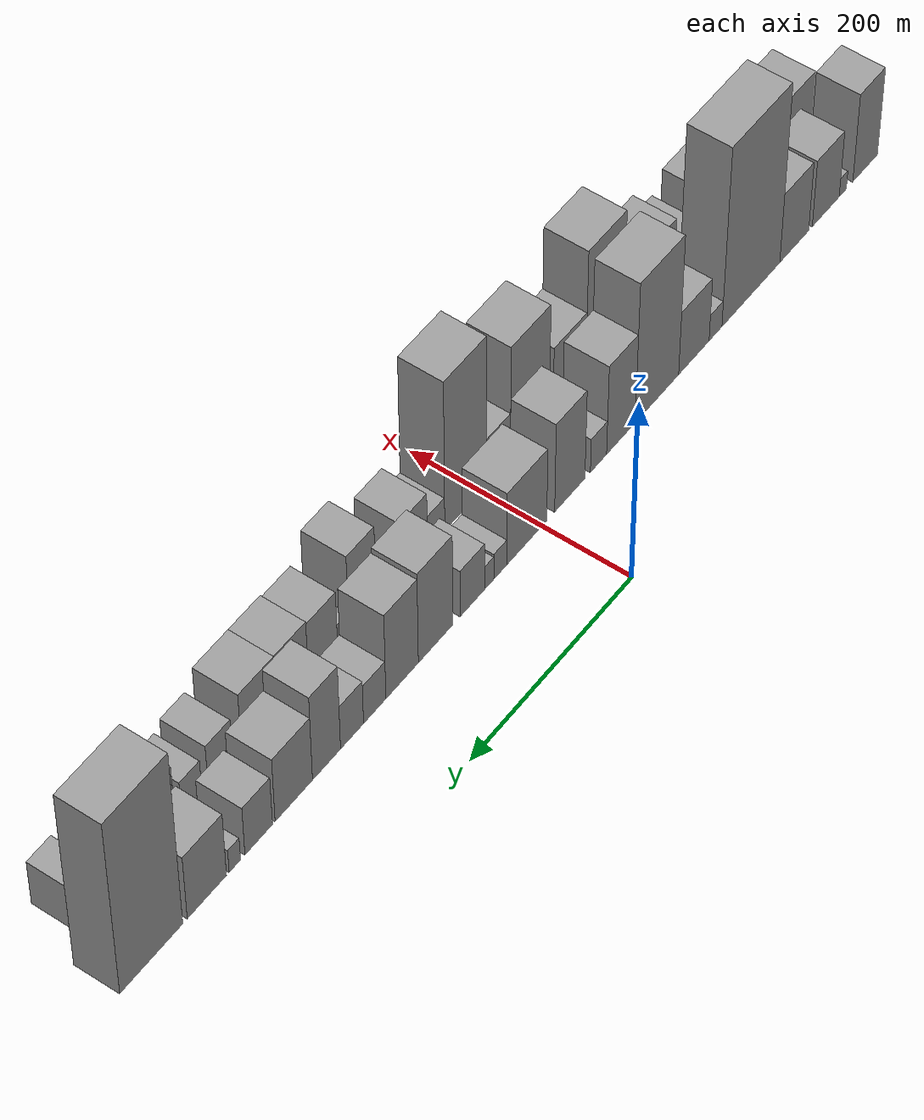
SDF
<sdf version="1.6">
 <world name="default">
  <scene>
   <sky><clouds><speed>12</speed></clouds></sky>
   <ambient>0.4 0.4 0.4 1</ambient>
   <background>0.7 0.7 0.7 1</background>
   <shadows>1</shadows>
  </scene>
  <gravity>0 0 -9.8066</gravity>
  <magnetic_field>6e-06 2.3e-05 -4.2e-05</magnetic_field>
  <physics default="0" name="default_physics" type="ode">
   <ode>
    <solver>
     <type>quick</type>
     <iters>10</iters>
     <sor>1.0</sor>
     <use_dynamic_moi_rescaling>0</use_dynamic_moi_rescaling>
    </solver>
    <constraints>
     <cfm>0</cfm>
     <erp>0.2</erp>
     <contact_max_correcting_vel>100</contact_max_correcting_vel>
     <contact_surface_layer>0.001</contact_surface_layer>
    </constraints>
   </ode>
   <max_step_size>0.004</max_step_size>
   <real_time_factor>1</real_time_factor>
   <real_time_update_rate>250</real_time_update_rate>
  </physics>
  <light name="sun" type="directional">
   <pose>0 0 10 0 0 0</pose>
   <diffuse>0.8 0.8 0.8 1</diffuse>
   <specular>0.2 0.2 0.2 1</specular>
   <attenuation>
    <range>1000</range>
    <constant>0.9</constant>
    <linear>0.01</linear>
    <quadratic>0.001</quadratic>
   </attenuation>
   <direction>-0.5 0.1 -0.9</direction>
  </light>
  <model name="building_1">
   <static>1</static>
   <pose>100.0000 -432.4942 0 0.000000 0.000000 0.000000</pose>
   <link name="link">
    <pose>0 0 49.50 0 0 0</pose>
    <collision name="collision"><geometry><box><size>40.0000 35.0115 99.0000</size></box></geometry></collision>
    <visual name="visual">
     <cast_shadows>0</cast_shadows>
     <geometry><box><size>40.0000 35.0115 99.0000</size></box></geometry>
     <material>
      <script>
       <uri>model://grey_wall/materials/scripts</uri>
       <uri>model://grey_wall/materials/textures</uri>
       <name>vrc/grey_wall</name>
      </script>
     </material>
    </visual>
   </link>
  </model>
  <model name="building_2">
   <static>1</static>
   <pose>100.0000 -400.9338 0 0.000000 0.000000 0.000000</pose>
   <link name="link">
    <pose>0 0 10.50 0 0 0</pose>
    <collision name="collision"><geometry><box><size>40.0000 10.1093 21.0000</size></box></geometry></collision>
    <visual name="visual">
     <cast_shadows>0</cast_shadows>
     <geometry><box><size>40.0000 10.1093 21.0000</size></box></geometry>
     <material>
      <script>
       <uri>model://grey_wall/materials/scripts</uri>
       <uri>model://grey_wall/materials/textures</uri>
       <name>vrc/grey_wall</name>
      </script>
     </material>
    </visual>
   </link>
  </model>
  <model name="building_3">
   <static>1</static>
   <pose>100.0000 -377.0162 0 0.000000 0.000000 0.000000</pose>
   <link name="link">
    <pose>0 0 37.50 0 0 0</pose>
    <collision name="collision"><geometry><box><size>40.0000 37.7259 75.0000</size></box></geometry></collision>
    <visual name="visual">
     <cast_shadows>0</cast_shadows>
     <geometry><box><size>40.0000 37.7259 75.0000</size></box></geometry>
     <material>
      <script>
       <uri>model://grey_wall/materials/scripts</uri>
       <uri>model://grey_wall/materials/textures</uri>
       <name>vrc/grey_wall</name>
      </script>
     </material>
    </visual>
   </link>
  </model>
  <model name="building_4">
   <static>1</static>
   <pose>100.0000 -333.1597 0 0.000000 0.000000 0.000000</pose>
   <link name="link">
    <pose>0 0 39.00 0 0 0</pose>
    <collision name="collision"><geometry><box><size>40.0000 39.9869 78.0000</size></box></geometry></collision>
    <visual name="visual">
     <cast_shadows>0</cast_shadows>
     <geometry><box><size>40.0000 39.9869 78.0000</size></box></geometry>
     <material>
      <script>
       <uri>model://grey_wall/materials/scripts</uri>
       <uri>model://grey_wall/materials/textures</uri>
       <name>vrc/grey_wall</name>
      </script>
     </material>
    </visual>
   </link>
  </model>
  <model name="building_5">
   <static>1</static>
   <pose>100.0000 -273.7759 0 0.000000 0.000000 0.000000</pose>
   <link name="link">
    <pose>0 0 100.50 0 0 0</pose>
    <collision name="collision"><geometry><box><size>40.0000 78.7808 201.0000</size></box></geometry></collision>
    <visual name="visual">
     <cast_shadows>0</cast_shadows>
     <geometry><box><size>40.0000 78.7808 201.0000</size></box></geometry>
     <material>
      <script>
       <uri>model://grey_wall/materials/scripts</uri>
       <uri>model://grey_wall/materials/textures</uri>
       <name>vrc/grey_wall</name>
      </script>
     </material>
    </visual>
   </link>
  </model>
  <model name="building_6">
   <static>1</static>
   <pose>100.0000 -225.7383 0 0.000000 0.000000 0.000000</pose>
   <link name="link">
    <pose>0 0 15.00 0 0 0</pose>
    <collision name="collision"><geometry><box><size>40.0000 17.2944 30.0000</size></box></geometry></collision>
    <visual name="visual">
     <cast_shadows>0</cast_shadows>
     <geometry><box><size>40.0000 17.2944 30.0000</size></box></geometry>
     <material>
      <script>
       <uri>model://grey_wall/materials/scripts</uri>
       <uri>model://grey_wall/materials/textures</uri>
       <name>vrc/grey_wall</name>
      </script>
     </material>
    </visual>
   </link>
  </model>
  <model name="building_7">
   <static>1</static>
   <pose>100.0000 -196.7890 0 0.000000 0.000000 0.000000</pose>
   <link name="link">
    <pose>0 0 36.00 0 0 0</pose>
    <collision name="collision"><geometry><box><size>40.0000 40.6041 72.0000</size></box></geometry></collision>
    <visual name="visual">
     <cast_shadows>0</cast_shadows>
     <geometry><box><size>40.0000 40.6041 72.0000</size></box></geometry>
     <material>
      <script>
       <uri>model://grey_wall/materials/scripts</uri>
       <uri>model://grey_wall/materials/textures</uri>
       <name>vrc/grey_wall</name>
      </script>
     </material>
    </visual>
   </link>
  </model>
  <model name="building_8">
   <static>1</static>
   <pose>100.0000 -147.8988 0 0.000000 0.000000 0.000000</pose>
   <link name="link">
    <pose>0 0 79.50 0 0 0</pose>
    <collision name="collision"><geometry><box><size>40.0000 57.1761 159.0000</size></box></geometry></collision>
    <visual name="visual">
     <cast_shadows>0</cast_shadows>
     <geometry><box><size>40.0000 57.1761 159.0000</size></box></geometry>
     <material>
      <script>
       <uri>model://grey_wall/materials/scripts</uri>
       <uri>model://grey_wall/materials/textures</uri>
       <name>vrc/grey_wall</name>
      </script>
     </material>
    </visual>
   </link>
  </model>
  <model name="building_9">
   <static>1</static>
   <pose>100.0000 -100.7473 0 0.000000 0.000000 0.000000</pose>
   <link name="link">
    <pose>0 0 51.00 0 0 0</pose>
    <collision name="collision"><geometry><box><size>40.0000 37.1269 102.0000</size></box></geometry></collision>
    <visual name="visual">
     <cast_shadows>0</cast_shadows>
     <geometry><box><size>40.0000 37.1269 102.0000</size></box></geometry>
     <material>
      <script>
       <uri>model://grey_wall/materials/scripts</uri>
       <uri>model://grey_wall/materials/textures</uri>
       <name>vrc/grey_wall</name>
      </script>
     </material>
    </visual>
   </link>
  </model>
  <model name="building_10">
   <static>1</static>
   <pose>100.0000 -71.7634 0 0.000000 0.000000 0.000000</pose>
   <link name="link">
    <pose>0 0 19.50 0 0 0</pose>
    <collision name="collision"><geometry><box><size>40.0000 20.8409 39.0000</size></box></geometry></collision>
    <visual name="visual">
     <cast_shadows>0</cast_shadows>
     <geometry><box><size>40.0000 20.8409 39.0000</size></box></geometry>
     <material>
      <script>
       <uri>model://grey_wall/materials/scripts</uri>
       <uri>model://grey_wall/materials/textures</uri>
       <name>vrc/grey_wall</name>
      </script>
     </material>
    </visual>
   </link>
  </model>
  <model name="building_11">
   <static>1</static>
   <pose>100.0000 -35.0520 0 0.000000 0.000000 0.000000</pose>
   <link name="link">
    <pose>0 0 51.00 0 0 0</pose>
    <collision name="collision"><geometry><box><size>40.0000 38.5819 102.0000</size></box></geometry></collision>
    <visual name="visual">
     <cast_shadows>0</cast_shadows>
     <geometry><box><size>40.0000 38.5819 102.0000</size></box></geometry>
     <material>
      <script>
       <uri>model://grey_wall/materials/scripts</uri>
       <uri>model://grey_wall/materials/textures</uri>
       <name>vrc/grey_wall</name>
      </script>
     </material>
    </visual>
   </link>
  </model>
  <model name="building_12">
   <static>1</static>
   <pose>100.0000 19.2634 0 0.000000 0.000000 0.000000</pose>
   <link name="link">
    <pose>0 0 42.00 0 0 0</pose>
    <collision name="collision"><geometry><box><size>40.0000 50.0490 84.0000</size></box></geometry></collision>
    <visual name="visual">
     <cast_shadows>0</cast_shadows>
     <geometry><box><size>40.0000 50.0490 84.0000</size></box></geometry>
     <material>
      <script>
       <uri>model://grey_wall/materials/scripts</uri>
       <uri>model://grey_wall/materials/textures</uri>
       <name>vrc/grey_wall</name>
      </script>
     </material>
    </visual>
   </link>
  </model>
  <model name="building_13">
   <static>1</static>
   <pose>100.0000 52.4092 0 0.000000 0.000000 0.000000</pose>
   <link name="link">
    <pose>0 0 15.00 0 0 0</pose>
    <collision name="collision"><geometry><box><size>40.0000 16.2426 30.0000</size></box></geometry></collision>
    <visual name="visual">
     <cast_shadows>0</cast_shadows>
     <geometry><box><size>40.0000 16.2426 30.0000</size></box></geometry>
     <material>
      <script>
       <uri>model://grey_wall/materials/scripts</uri>
       <uri>model://grey_wall/materials/textures</uri>
       <name>vrc/grey_wall</name>
      </script>
     </material>
    </visual>
   </link>
  </model>
  <model name="building_14">
   <static>1</static>
   <pose>100.0000 66.1328 0 0.000000 0.000000 0.000000</pose>
   <link name="link">
    <pose>0 0 13.50 0 0 0</pose>
    <collision name="collision"><geometry><box><size>40.0000 11.2047 27.0000</size></box></geometry></collision>
    <visual name="visual">
     <cast_shadows>0</cast_shadows>
     <geometry><box><size>40.0000 11.2047 27.0000</size></box></geometry>
     <material>
      <script>
       <uri>model://grey_wall/materials/scripts</uri>
       <uri>model://grey_wall/materials/textures</uri>
       <name>vrc/grey_wall</name>
      </script>
     </material>
    </visual>
   </link>
  </model>
  <model name="building_15">
   <static>1</static>
   <pose>100.0000 86.8536 0 0.000000 0.000000 0.000000</pose>
   <link name="link">
    <pose>0 0 27.00 0 0 0</pose>
    <collision name="collision"><geometry><box><size>40.0000 30.2367 54.0000</size></box></geometry></collision>
    <visual name="visual">
     <cast_shadows>0</cast_shadows>
     <geometry><box><size>40.0000 30.2367 54.0000</size></box></geometry>
     <material>
      <script>
       <uri>model://grey_wall/materials/scripts</uri>
       <uri>model://grey_wall/materials/textures</uri>
       <name>vrc/grey_wall</name>
      </script>
     </material>
    </visual>
   </link>
  </model>
  <model name="building_16">
   <static>1</static>
   <pose>100.0000 131.8946 0 0.000000 0.000000 0.000000</pose>
   <link name="link">
    <pose>0 0 52.50 0 0 0</pose>
    <collision name="collision"><geometry><box><size>40.0000 41.8454 105.0000</size></box></geometry></collision>
    <visual name="visual">
     <cast_shadows>0</cast_shadows>
     <geometry><box><size>40.0000 41.8454 105.0000</size></box></geometry>
     <material>
      <script>
       <uri>model://grey_wall/materials/scripts</uri>
       <uri>model://grey_wall/materials/textures</uri>
       <name>vrc/grey_wall</name>
      </script>
     </material>
    </visual>
   </link>
  </model>
  <model name="building_17">
   <static>1</static>
   <pose>100.0000 172.3350 0 0.000000 0.000000 0.000000</pose>
   <link name="link">
    <pose>0 0 49.50 0 0 0</pose>
    <collision name="collision"><geometry><box><size>40.0000 39.0354 99.0000</size></box></geometry></collision>
    <visual name="visual">
     <cast_shadows>0</cast_shadows>
     <geometry><box><size>40.0000 39.0354 99.0000</size></box></geometry>
     <material>
      <script>
       <uri>model://grey_wall/materials/scripts</uri>
       <uri>model://grey_wall/materials/textures</uri>
       <name>vrc/grey_wall</name>
      </script>
     </material>
    </visual>
   </link>
  </model>
  <model name="building_18">
   <static>1</static>
   <pose>100.0000 205.1579 0 0.000000 0.000000 0.000000</pose>
   <link name="link">
    <pose>0 0 22.50 0 0 0</pose>
    <collision name="collision"><geometry><box><size>40.0000 26.6104 45.0000</size></box></geometry></collision>
    <visual name="visual">
     <cast_shadows>0</cast_shadows>
     <geometry><box><size>40.0000 26.6104 45.0000</size></box></geometry>
     <material>
      <script>
       <uri>model://grey_wall/materials/scripts</uri>
       <uri>model://grey_wall/materials/textures</uri>
       <name>vrc/grey_wall</name>
      </script>
     </material>
    </visual>
   </link>
  </model>
  <model name="building_19">
   <static>1</static>
   <pose>100.0000 232.0301 0 0.000000 0.000000 0.000000</pose>
   <link name="link">
    <pose>0 0 25.50 0 0 0</pose>
    <collision name="collision"><geometry><box><size>40.0000 27.1341 51.0000</size></box></geometry></collision>
    <visual name="visual">
     <cast_shadows>0</cast_shadows>
     <geometry><box><size>40.0000 27.1341 51.0000</size></box></geometry>
     <material>
      <script>
       <uri>model://grey_wall/materials/scripts</uri>
       <uri>model://grey_wall/materials/textures</uri>
       <name>vrc/grey_wall</name>
      </script>
     </material>
    </visual>
   </link>
  </model>
  <model name="building_20">
   <static>1</static>
   <pose>100.0000 261.9880 0 0.000000 0.000000 0.000000</pose>
   <link name="link">
    <pose>0 0 49.50 0 0 0</pose>
    <collision name="collision"><geometry><box><size>40.0000 32.7817 99.0000</size></box></geometry></collision>
    <visual name="visual">
     <cast_shadows>0</cast_shadows>
     <geometry><box><size>40.0000 32.7817 99.0000</size></box></geometry>
     <material>
      <script>
       <uri>model://grey_wall/materials/scripts</uri>
       <uri>model://grey_wall/materials/textures</uri>
       <name>vrc/grey_wall</name>
      </script>
     </material>
    </visual>
   </link>
  </model>
  <model name="building_21">
   <static>1</static>
   <pose>100.0000 300.0381 0 0.000000 0.000000 0.000000</pose>
   <link name="link">
    <pose>0 0 37.50 0 0 0</pose>
    <collision name="collision"><geometry><box><size>40.0000 43.3186 75.0000</size></box></geometry></collision>
    <visual name="visual">
     <cast_shadows>0</cast_shadows>
     <geometry><box><size>40.0000 43.3186 75.0000</size></box></geometry>
     <material>
      <script>
       <uri>model://grey_wall/materials/scripts</uri>
       <uri>model://grey_wall/materials/textures</uri>
       <name>vrc/grey_wall</name>
      </script>
     </material>
    </visual>
   </link>
  </model>
  <model name="building_22">
   <static>1</static>
   <pose>100.0000 340.4455 0 0.000000 0.000000 0.000000</pose>
   <link name="link">
    <pose>0 0 28.50 0 0 0</pose>
    <collision name="collision"><geometry><box><size>40.0000 31.4962 57.0000</size></box></geometry></collision>
    <visual name="visual">
     <cast_shadows>0</cast_shadows>
     <geometry><box><size>40.0000 31.4962 57.0000</size></box></geometry>
     <material>
      <script>
       <uri>model://grey_wall/materials/scripts</uri>
       <uri>model://grey_wall/materials/textures</uri>
       <name>vrc/grey_wall</name>
      </script>
     </material>
    </visual>
   </link>
  </model>
  <model name="building_23">
   <static>1</static>
   <pose>100.0000 367.6402 0 0.000000 0.000000 0.000000</pose>
   <link name="link">
    <pose>0 0 13.50 0 0 0</pose>
    <collision name="collision"><geometry><box><size>40.0000 12.8931 27.0000</size></box></geometry></collision>
    <visual name="visual">
     <cast_shadows>0</cast_shadows>
     <geometry><box><size>40.0000 12.8931 27.0000</size></box></geometry>
     <material>
      <script>
       <uri>model://grey_wall/materials/scripts</uri>
       <uri>model://grey_wall/materials/textures</uri>
       <name>vrc/grey_wall</name>
      </script>
     </material>
    </visual>
   </link>
  </model>
  <model name="building_24">
   <static>1</static>
   <pose>100.0000 399.1260 0 0.000000 0.000000 0.000000</pose>
   <link name="link">
    <pose>0 0 37.50 0 0 0</pose>
    <collision name="collision"><geometry><box><size>40.0000 44.0786 75.0000</size></box></geometry></collision>
    <visual name="visual">
     <cast_shadows>0</cast_shadows>
     <geometry><box><size>40.0000 44.0786 75.0000</size></box></geometry>
     <material>
      <script>
       <uri>model://grey_wall/materials/scripts</uri>
       <uri>model://grey_wall/materials/textures</uri>
       <name>vrc/grey_wall</name>
      </script>
     </material>
    </visual>
   </link>
  </model>
  <model name="building_25">
   <static>1</static>
   <pose>100.0000 460.9439 0 0.000000 0.000000 0.000000</pose>
   <link name="link">
    <pose>0 0 102.00 0 0 0</pose>
    <collision name="collision"><geometry><box><size>40.0000 69.5573 204.0000</size></box></geometry></collision>
    <visual name="visual">
     <cast_shadows>0</cast_shadows>
     <geometry><box><size>40.0000 69.5573 204.0000</size></box></geometry>
     <material>
      <script>
       <uri>model://grey_wall/materials/scripts</uri>
       <uri>model://grey_wall/materials/textures</uri>
       <name>vrc/grey_wall</name>
      </script>
     </material>
    </visual>
   </link>
  </model>
  <model name="building_26">
   <static>1</static>
   <pose>155.0000 -420.9958 0 0.000000 0.000000 0.000000</pose>
   <link name="link">
    <pose>0 0 34.50 0 0 0</pose>
    <collision name="collision"><geometry><box><size>40.0000 38.0083 69.0000</size></box></geometry></collision>
    <visual name="visual">
     <cast_shadows>0</cast_shadows>
     <geometry><box><size>40.0000 38.0083 69.0000</size></box></geometry>
     <material>
      <script>
       <uri>model://grey_wall/materials/scripts</uri>
       <uri>model://grey_wall/materials/textures</uri>
       <name>vrc/grey_wall</name>
      </script>
     </material>
    </visual>
   </link>
  </model>
  <model name="building_27">
   <static>1</static>
   <pose>155.0000 -388.5147 0 0.000000 0.000000 0.000000</pose>
   <link name="link">
    <pose>0 0 13.50 0 0 0</pose>
    <collision name="collision"><geometry><box><size>40.0000 10.9538 27.0000</size></box></geometry></collision>
    <visual name="visual">
     <cast_shadows>0</cast_shadows>
     <geometry><box><size>40.0000 10.9538 27.0000</size></box></geometry>
     <material>
      <script>
       <uri>model://grey_wall/materials/scripts</uri>
       <uri>model://grey_wall/materials/textures</uri>
       <name>vrc/grey_wall</name>
      </script>
     </material>
    </visual>
   </link>
  </model>
  <model name="building_28">
   <static>1</static>
   <pose>155.0000 -373.1808 0 0.000000 0.000000 0.000000</pose>
   <link name="link">
    <pose>0 0 19.50 0 0 0</pose>
    <collision name="collision"><geometry><box><size>40.0000 19.7140 39.0000</size></box></geometry></collision>
    <visual name="visual">
     <cast_shadows>0</cast_shadows>
     <geometry><box><size>40.0000 19.7140 39.0000</size></box></geometry>
     <material>
      <script>
       <uri>model://grey_wall/materials/scripts</uri>
       <uri>model://grey_wall/materials/textures</uri>
       <name>vrc/grey_wall</name>
      </script>
     </material>
    </visual>
   </link>
  </model>
  <model name="building_29">
   <static>1</static>
   <pose>155.0000 -341.9853 0 0.000000 0.000000 0.000000</pose>
   <link name="link">
    <pose>0 0 33.00 0 0 0</pose>
    <collision name="collision"><geometry><box><size>40.0000 36.6771 66.0000</size></box></geometry></collision>
    <visual name="visual">
     <cast_shadows>0</cast_shadows>
     <geometry><box><size>40.0000 36.6771 66.0000</size></box></geometry>
     <material>
      <script>
       <uri>model://grey_wall/materials/scripts</uri>
       <uri>model://grey_wall/materials/textures</uri>
       <name>vrc/grey_wall</name>
      </script>
     </material>
    </visual>
   </link>
  </model>
  <model name="building_30">
   <static>1</static>
   <pose>155.0000 -306.8685 0 0.000000 0.000000 0.000000</pose>
   <link name="link">
    <pose>0 0 33.00 0 0 0</pose>
    <collision name="collision"><geometry><box><size>40.0000 33.5566 66.0000</size></box></geometry></collision>
    <visual name="visual">
     <cast_shadows>0</cast_shadows>
     <geometry><box><size>40.0000 33.5566 66.0000</size></box></geometry>
     <material>
      <script>
       <uri>model://grey_wall/materials/scripts</uri>
       <uri>model://grey_wall/materials/textures</uri>
       <name>vrc/grey_wall</name>
      </script>
     </material>
    </visual>
   </link>
  </model>
  <model name="building_31">
   <static>1</static>
   <pose>155.0000 -283.5239 0 0.000000 0.000000 0.000000</pose>
   <link name="link">
    <pose>0 0 13.50 0 0 0</pose>
    <collision name="collision"><geometry><box><size>40.0000 13.1326 27.0000</size></box></geometry></collision>
    <visual name="visual">
     <cast_shadows>0</cast_shadows>
     <geometry><box><size>40.0000 13.1326 27.0000</size></box></geometry>
     <material>
      <script>
       <uri>model://grey_wall/materials/scripts</uri>
       <uri>model://grey_wall/materials/textures</uri>
       <name>vrc/grey_wall</name>
      </script>
     </material>
    </visual>
   </link>
  </model>
  <model name="building_32">
   <static>1</static>
   <pose>155.0000 -263.8584 0 0.000000 0.000000 0.000000</pose>
   <link name="link">
    <pose>0 0 24.00 0 0 0</pose>
    <collision name="collision"><geometry><box><size>40.0000 26.1984 48.0000</size></box></geometry></collision>
    <visual name="visual">
     <cast_shadows>0</cast_shadows>
     <geometry><box><size>40.0000 26.1984 48.0000</size></box></geometry>
     <material>
      <script>
       <uri>model://grey_wall/materials/scripts</uri>
       <uri>model://grey_wall/materials/textures</uri>
       <name>vrc/grey_wall</name>
      </script>
     </material>
    </visual>
   </link>
  </model>
  <model name="building_33">
   <static>1</static>
   <pose>155.0000 -229.9461 0 0.000000 0.000000 0.000000</pose>
   <link name="link">
    <pose>0 0 36.00 0 0 0</pose>
    <collision name="collision"><geometry><box><size>40.0000 41.6261 72.0000</size></box></geometry></collision>
    <visual name="visual">
     <cast_shadows>0</cast_shadows>
     <geometry><box><size>40.0000 41.6261 72.0000</size></box></geometry>
     <material>
      <script>
       <uri>model://grey_wall/materials/scripts</uri>
       <uri>model://grey_wall/materials/textures</uri>
       <name>vrc/grey_wall</name>
      </script>
     </material>
    </visual>
   </link>
  </model>
  <model name="building_34">
   <static>1</static>
   <pose>155.0000 -194.3432 0 0.000000 0.000000 0.000000</pose>
   <link name="link">
    <pose>0 0 13.50 0 0 0</pose>
    <collision name="collision"><geometry><box><size>40.0000 11.5797 27.0000</size></box></geometry></collision>
    <visual name="visual">
     <cast_shadows>0</cast_shadows>
     <geometry><box><size>40.0000 11.5797 27.0000</size></box></geometry>
     <material>
      <script>
       <uri>model://grey_wall/materials/scripts</uri>
       <uri>model://grey_wall/materials/textures</uri>
       <name>vrc/grey_wall</name>
      </script>
     </material>
    </visual>
   </link>
  </model>
  <model name="building_35">
   <static>1</static>
   <pose>155.0000 -158.0654 0 0.000000 0.000000 0.000000</pose>
   <link name="link">
    <pose>0 0 72.00 0 0 0</pose>
    <collision name="collision"><geometry><box><size>40.0000 48.9759 144.0000</size></box></geometry></collision>
    <visual name="visual">
     <cast_shadows>0</cast_shadows>
     <geometry><box><size>40.0000 48.9759 144.0000</size></box></geometry>
     <material>
      <script>
       <uri>model://grey_wall/materials/scripts</uri>
       <uri>model://grey_wall/materials/textures</uri>
       <name>vrc/grey_wall</name>
      </script>
     </material>
    </visual>
   </link>
  </model>
  <model name="building_36">
   <static>1</static>
   <pose>155.0000 -112.5287 0 0.000000 0.000000 0.000000</pose>
   <link name="link">
    <pose>0 0 37.50 0 0 0</pose>
    <collision name="collision"><geometry><box><size>40.0000 42.0975 75.0000</size></box></geometry></collision>
    <visual name="visual">
     <cast_shadows>0</cast_shadows>
     <geometry><box><size>40.0000 42.0975 75.0000</size></box></geometry>
     <material>
      <script>
       <uri>model://grey_wall/materials/scripts</uri>
       <uri>model://grey_wall/materials/textures</uri>
       <name>vrc/grey_wall</name>
      </script>
     </material>
    </visual>
   </link>
  </model>
  <model name="building_37">
   <static>1</static>
   <pose>155.0000 -61.7200 0 0.000000 0.000000 0.000000</pose>
   <link name="link">
    <pose>0 0 64.50 0 0 0</pose>
    <collision name="collision"><geometry><box><size>40.0000 49.5199 129.0000</size></box></geometry></collision>
    <visual name="visual">
     <cast_shadows>0</cast_shadows>
     <geometry><box><size>40.0000 49.5199 129.0000</size></box></geometry>
     <material>
      <script>
       <uri>model://grey_wall/materials/scripts</uri>
       <uri>model://grey_wall/materials/textures</uri>
       <name>vrc/grey_wall</name>
      </script>
     </material>
    </visual>
   </link>
  </model>
  <model name="building_38">
   <static>1</static>
   <pose>155.0000 -21.9188 0 0.000000 0.000000 0.000000</pose>
   <link name="link">
    <pose>0 0 27.00 0 0 0</pose>
    <collision name="collision"><geometry><box><size>40.0000 30.0825 54.0000</size></box></geometry></collision>
    <visual name="visual">
     <cast_shadows>0</cast_shadows>
     <geometry><box><size>40.0000 30.0825 54.0000</size></box></geometry>
     <material>
      <script>
       <uri>model://grey_wall/materials/scripts</uri>
       <uri>model://grey_wall/materials/textures</uri>
       <name>vrc/grey_wall</name>
      </script>
     </material>
    </visual>
   </link>
  </model>
  <model name="building_39">
   <static>1</static>
   <pose>155.0000 19.1896 0 0.000000 0.000000 0.000000</pose>
   <link name="link">
    <pose>0 0 85.50 0 0 0</pose>
    <collision name="collision"><geometry><box><size>40.0000 52.1341 171.0000</size></box></geometry></collision>
    <visual name="visual">
     <cast_shadows>0</cast_shadows>
     <geometry><box><size>40.0000 52.1341 171.0000</size></box></geometry>
     <material>
      <script>
       <uri>model://grey_wall/materials/scripts</uri>
       <uri>model://grey_wall/materials/textures</uri>
       <name>vrc/grey_wall</name>
      </script>
     </material>
    </visual>
   </link>
  </model>
  <model name="building_40">
   <static>1</static>
   <pose>155.0000 55.9720 0 0.000000 0.000000 0.000000</pose>
   <link name="link">
    <pose>0 0 19.50 0 0 0</pose>
    <collision name="collision"><geometry><box><size>40.0000 21.4307 39.0000</size></box></geometry></collision>
    <visual name="visual">
     <cast_shadows>0</cast_shadows>
     <geometry><box><size>40.0000 21.4307 39.0000</size></box></geometry>
     <material>
      <script>
       <uri>model://grey_wall/materials/scripts</uri>
       <uri>model://grey_wall/materials/textures</uri>
       <name>vrc/grey_wall</name>
      </script>
     </material>
    </visual>
   </link>
  </model>
  <model name="building_41">
   <static>1</static>
   <pose>155.0000 83.4148 0 0.000000 0.000000 0.000000</pose>
   <link name="link">
    <pose>0 0 33.00 0 0 0</pose>
    <collision name="collision"><geometry><box><size>40.0000 33.4549 66.0000</size></box></geometry></collision>
    <visual name="visual">
     <cast_shadows>0</cast_shadows>
     <geometry><box><size>40.0000 33.4549 66.0000</size></box></geometry>
     <material>
      <script>
       <uri>model://grey_wall/materials/scripts</uri>
       <uri>model://grey_wall/materials/textures</uri>
       <name>vrc/grey_wall</name>
      </script>
     </material>
    </visual>
   </link>
  </model>
  <model name="building_42">
   <static>1</static>
   <pose>155.0000 116.7351 0 0.000000 0.000000 0.000000</pose>
   <link name="link">
    <pose>0 0 13.50 0 0 0</pose>
    <collision name="collision"><geometry><box><size>40.0000 13.1857 27.0000</size></box></geometry></collision>
    <visual name="visual">
     <cast_shadows>0</cast_shadows>
     <geometry><box><size>40.0000 13.1857 27.0000</size></box></geometry>
     <material>
      <script>
       <uri>model://grey_wall/materials/scripts</uri>
       <uri>model://grey_wall/materials/textures</uri>
       <name>vrc/grey_wall</name>
      </script>
     </material>
    </visual>
   </link>
  </model>
  <model name="building_43">
   <static>1</static>
   <pose>155.0000 145.8277 0 0.000000 0.000000 0.000000</pose>
   <link name="link">
    <pose>0 0 46.50 0 0 0</pose>
    <collision name="collision"><geometry><box><size>40.0000 32.9994 93.0000</size></box></geometry></collision>
    <visual name="visual">
     <cast_shadows>0</cast_shadows>
     <geometry><box><size>40.0000 32.9994 93.0000</size></box></geometry>
     <material>
      <script>
       <uri>model://grey_wall/materials/scripts</uri>
       <uri>model://grey_wall/materials/textures</uri>
       <name>vrc/grey_wall</name>
      </script>
     </material>
    </visual>
   </link>
  </model>
  <model name="building_44">
   <static>1</static>
   <pose>155.0000 169.0052 0 0.000000 0.000000 0.000000</pose>
   <link name="link">
    <pose>0 0 13.50 0 0 0</pose>
    <collision name="collision"><geometry><box><size>40.0000 13.3555 27.0000</size></box></geometry></collision>
    <visual name="visual">
     <cast_shadows>0</cast_shadows>
     <geometry><box><size>40.0000 13.3555 27.0000</size></box></geometry>
     <material>
      <script>
       <uri>model://grey_wall/materials/scripts</uri>
       <uri>model://grey_wall/materials/textures</uri>
       <name>vrc/grey_wall</name>
      </script>
     </material>
    </visual>
   </link>
  </model>
  <model name="building_45">
   <static>1</static>
   <pose>155.0000 193.0488 0 0.000000 0.000000 0.000000</pose>
   <link name="link">
    <pose>0 0 33.00 0 0 0</pose>
    <collision name="collision"><geometry><box><size>40.0000 34.7317 66.0000</size></box></geometry></collision>
    <visual name="visual">
     <cast_shadows>0</cast_shadows>
     <geometry><box><size>40.0000 34.7317 66.0000</size></box></geometry>
     <material>
      <script>
       <uri>model://grey_wall/materials/scripts</uri>
       <uri>model://grey_wall/materials/textures</uri>
       <name>vrc/grey_wall</name>
      </script>
     </material>
    </visual>
   </link>
  </model>
  <model name="building_46">
   <static>1</static>
   <pose>155.0000 228.9056 0 0.000000 0.000000 0.000000</pose>
   <link name="link">
    <pose>0 0 34.50 0 0 0</pose>
    <collision name="collision"><geometry><box><size>40.0000 36.9820 69.0000</size></box></geometry></collision>
    <visual name="visual">
     <cast_shadows>0</cast_shadows>
     <geometry><box><size>40.0000 36.9820 69.0000</size></box></geometry>
     <material>
      <script>
       <uri>model://grey_wall/materials/scripts</uri>
       <uri>model://grey_wall/materials/textures</uri>
       <name>vrc/grey_wall</name>
      </script>
     </material>
    </visual>
   </link>
  </model>
  <model name="building_47">
   <static>1</static>
   <pose>155.0000 267.9491 0 0.000000 0.000000 0.000000</pose>
   <link name="link">
    <pose>0 0 34.50 0 0 0</pose>
    <collision name="collision"><geometry><box><size>40.0000 41.1049 69.0000</size></box></geometry></collision>
    <visual name="visual">
     <cast_shadows>0</cast_shadows>
     <geometry><box><size>40.0000 41.1049 69.0000</size></box></geometry>
     <material>
      <script>
       <uri>model://grey_wall/materials/scripts</uri>
       <uri>model://grey_wall/materials/textures</uri>
       <name>vrc/grey_wall</name>
      </script>
     </material>
    </visual>
   </link>
  </model>
  <model name="building_48">
   <static>1</static>
   <pose>155.0000 312.6215 0 0.000000 0.000000 0.000000</pose>
   <link name="link">
    <pose>0 0 25.50 0 0 0</pose>
    <collision name="collision"><geometry><box><size>40.0000 28.2399 51.0000</size></box></geometry></collision>
    <visual name="visual">
     <cast_shadows>0</cast_shadows>
     <geometry><box><size>40.0000 28.2399 51.0000</size></box></geometry>
     <material>
      <script>
       <uri>model://grey_wall/materials/scripts</uri>
       <uri>model://grey_wall/materials/textures</uri>
       <name>vrc/grey_wall</name>
      </script>
     </material>
    </visual>
   </link>
  </model>
  <model name="building_49">
   <static>1</static>
   <pose>155.0000 345.3048 0 0.000000 0.000000 0.000000</pose>
   <link name="link">
    <pose>0 0 21.00 0 0 0</pose>
    <collision name="collision"><geometry><box><size>40.0000 23.1267 42.0000</size></box></geometry></collision>
    <visual name="visual">
     <cast_shadows>0</cast_shadows>
     <geometry><box><size>40.0000 23.1267 42.0000</size></box></geometry>
     <material>
      <script>
       <uri>model://grey_wall/materials/scripts</uri>
       <uri>model://grey_wall/materials/textures</uri>
       <name>vrc/grey_wall</name>
      </script>
     </material>
    </visual>
   </link>
  </model>
  <model name="building_50">
   <static>1</static>
   <pose>155.0000 384.2247 0 0.000000 0.000000 0.000000</pose>
   <link name="link">
    <pose>0 0 34.50 0 0 0</pose>
    <collision name="collision"><geometry><box><size>40.0000 40.7129 69.0000</size></box></geometry></collision>
    <visual name="visual">
     <cast_shadows>0</cast_shadows>
     <geometry><box><size>40.0000 40.7129 69.0000</size></box></geometry>
     <material>
      <script>
       <uri>model://grey_wall/materials/scripts</uri>
       <uri>model://grey_wall/materials/textures</uri>
       <name>vrc/grey_wall</name>
      </script>
     </material>
    </visual>
   </link>
  </model>
  <model name="building_51">
   <static>1</static>
   <pose>155.0000 413.6783 0 0.000000 0.000000 0.000000</pose>
   <link name="link">
    <pose>0 0 18.00 0 0 0</pose>
    <collision name="collision"><geometry><box><size>40.0000 18.1944 36.0000</size></box></geometry></collision>
    <visual name="visual">
     <cast_shadows>0</cast_shadows>
     <geometry><box><size>40.0000 18.1944 36.0000</size></box></geometry>
     <material>
      <script>
       <uri>model://grey_wall/materials/scripts</uri>
       <uri>model://grey_wall/materials/textures</uri>
       <name>vrc/grey_wall</name>
      </script>
     </material>
    </visual>
   </link>
  </model>
  <model name="building_52">
   <static>1</static>
   <pose>155.0000 431.5471 0 0.000000 0.000000 0.000000</pose>
   <link name="link">
    <pose>0 0 15.00 0 0 0</pose>
    <collision name="collision"><geometry><box><size>40.0000 17.5431 30.0000</size></box></geometry></collision>
    <visual name="visual">
     <cast_shadows>0</cast_shadows>
     <geometry><box><size>40.0000 17.5431 30.0000</size></box></geometry>
     <material>
      <script>
       <uri>model://grey_wall/materials/scripts</uri>
       <uri>model://grey_wall/materials/textures</uri>
       <name>vrc/grey_wall</name>
      </script>
     </material>
    </visual>
   </link>
  </model>
  <model name="building_53">
   <static>1</static>
   <pose>155.0000 443.5030 0 0.000000 0.000000 0.000000</pose>
   <link name="link">
    <pose>0 0 7.50 0 0 0</pose>
    <collision name="collision"><geometry><box><size>40.0000 6.3687 15.0000</size></box></geometry></collision>
    <visual name="visual">
     <cast_shadows>0</cast_shadows>
     <geometry><box><size>40.0000 6.3687 15.0000</size></box></geometry>
     <material>
      <script>
       <uri>model://grey_wall/materials/scripts</uri>
       <uri>model://grey_wall/materials/textures</uri>
       <name>vrc/grey_wall</name>
      </script>
     </material>
    </visual>
   </link>
  </model>
  <model name="building_54">
   <static>1</static>
   <pose>155.0000 460.1711 0 0.000000 0.000000 0.000000</pose>
   <link name="link">
    <pose>0 0 25.50 0 0 0</pose>
    <collision name="collision"><geometry><box><size>40.0000 26.9676 51.0000</size></box></geometry></collision>
    <visual name="visual">
     <cast_shadows>0</cast_shadows>
     <geometry><box><size>40.0000 26.9676 51.0000</size></box></geometry>
     <material>
      <script>
       <uri>model://grey_wall/materials/scripts</uri>
       <uri>model://grey_wall/materials/textures</uri>
       <name>vrc/grey_wall</name>
      </script>
     </material>
    </visual>
   </link>
  </model>
 </world>
</sdf>
